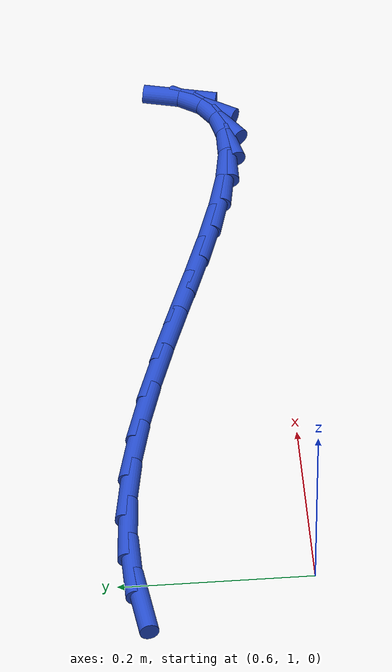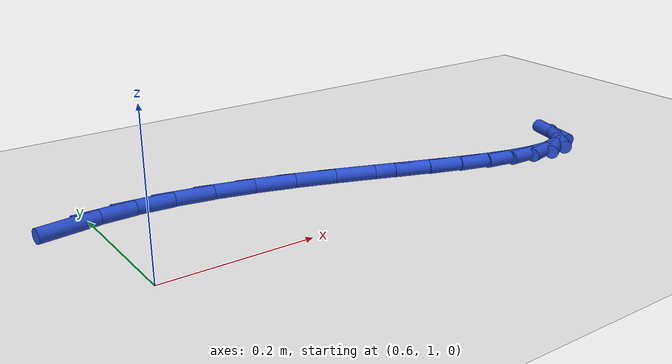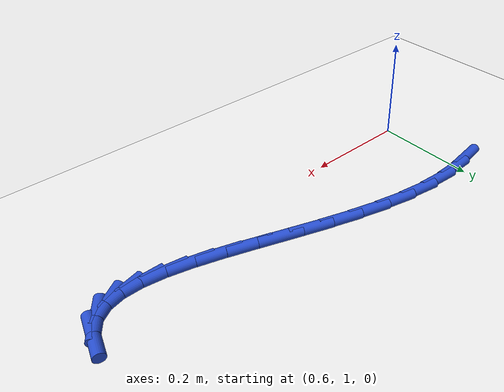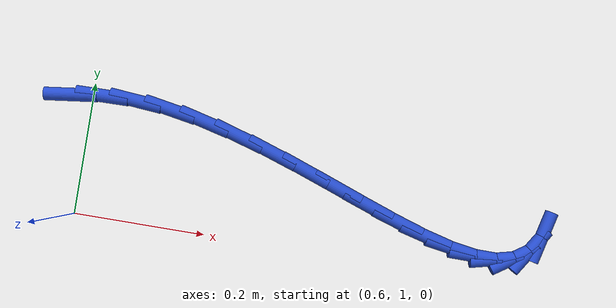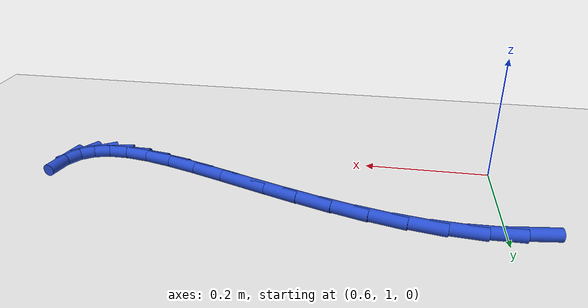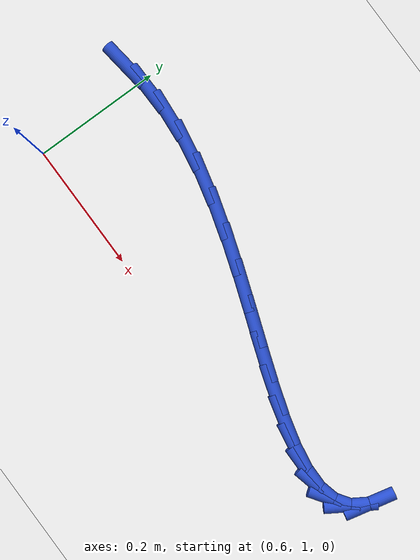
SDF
<sdf version="1.6">
 <world name="default">
  <model name="ground_plane">
   <static>1</static>
   <link name="link">
    <collision name="collision">
     <geometry><plane><normal>0 0 1</normal><size>100 100</size></plane></geometry>
     <surface><friction><ode><mu>100</mu><mu2>50</mu2></ode></friction></surface>
    </collision>
    <visual name="visual">
     <cast_shadows>0</cast_shadows>
     <geometry><plane><normal>0 0 1</normal><size>100 100</size></plane></geometry>
     <material>
      <script><uri>file://media/materials/scripts/gazebo.material</uri><name>Gazebo/WhiteGlow</name></script>
     </material>
    </visual>
   </link>
  </model>
  <model name="line">
   <link name="link_37">
    <pose>0.5686962242809466 1.1776729602812057 0.01 0 1.57 0.1258916611867134</pose>
    <collision name="collision">
     <geometry><cylinder><radius>0.01</radius><length>0.08</length></cylinder></geometry>
    </collision>
    <visual name="visual">
     <material>
      <script><name>Gazebo/Blue</name><uri>file://media/materials/scripts/gazebo.material</uri></script>
     </material>
     <geometry><cylinder><radius>0.01</radius><length>0.08</length></cylinder></geometry>
    </visual>
   </link>
   <link name="link_38">
    <pose>0.6159841366587461 1.1836577647251227 0.01 0 1.57 0.0144572070186565</pose>
    <collision name="collision">
     <geometry><cylinder><radius>0.01</radius><length>0.08</length></cylinder></geometry>
    </collision>
    <visual name="visual">
     <material>
      <script><name>Gazebo/Blue</name><uri>file://media/materials/scripts/gazebo.material</uri></script>
     </material>
     <geometry><cylinder><radius>0.01</radius><length>0.08</length></cylinder></geometry>
    </visual>
   </link>
   <link name="link_39">
    <pose>0.6669778760027624 1.1843950431385826 0.01 0 1.57 -0.08510780798336802</pose>
    <collision name="collision">
     <geometry><cylinder><radius>0.01</radius><length>0.08</length></cylinder></geometry>
    </collision>
    <visual name="visual">
     <material>
      <script><name>Gazebo/Blue</name><uri>file://media/materials/scripts/gazebo.material</uri></script>
     </material>
     <geometry><cylinder><radius>0.01</radius><length>0.08</length></cylinder></geometry>
    </visual>
   </link>
   <link name="link_40">
    <pose>0.7201433205949859 1.1798592920694408 0.01 0 1.57 -0.1729592587069869</pose>
    <collision name="collision">
     <geometry><cylinder><radius>0.01</radius><length>0.08</length></cylinder></geometry>
    </collision>
    <visual name="visual">
     <material>
      <script><name>Gazebo/Blue</name><uri>file://media/materials/scripts/gazebo.material</uri></script>
     </material>
     <geometry><cylinder><radius>0.01</radius><length>0.08</length></cylinder></geometry>
    </visual>
   </link>
   <link name="link_41">
    <pose>0.7742791219289952 1.1704015057862984 0.01 0 1.57 -0.2406707334244392</pose>
    <collision name="collision">
     <geometry><cylinder><radius>0.01</radius><length>0.08</length></cylinder></geometry>
    </collision>
    <visual name="visual">
     <material>
      <script><name>Gazebo/Blue</name><uri>file://media/materials/scripts/gazebo.material</uri></script>
     </material>
     <geometry><cylinder><radius>0.01</radius><length>0.08</length></cylinder></geometry>
    </visual>
   </link>
   <link name="link_42">
    <pose>0.8287643207282968 1.1570293276346737 0.01 0 1.57 -0.2902959865952461</pose>
    <collision name="collision">
     <geometry><cylinder><radius>0.01</radius><length>0.08</length></cylinder></geometry>
    </collision>
    <visual name="visual">
     <material>
      <script><name>Gazebo/Blue</name><uri>file://media/materials/scripts/gazebo.material</uri></script>
     </material>
     <geometry><cylinder><radius>0.01</radius><length>0.08</length></cylinder></geometry>
    </visual>
   </link>
   <link name="link_43">
    <pose>0.8830362791435478 1.1408163854913769 0.01 0 1.57 -0.324239251990807</pose>
    <collision name="collision">
     <geometry><cylinder><radius>0.01</radius><length>0.08</length></cylinder></geometry>
    </collision>
    <visual name="visual">
     <material>
      <script><name>Gazebo/Blue</name><uri>file://media/materials/scripts/gazebo.material</uri></script>
     </material>
     <geometry><cylinder><radius>0.01</radius><length>0.08</length></cylinder></geometry>
    </visual>
   </link>
   <link name="link_44">
    <pose>0.9365323593254058 1.1228363072332188 0.01 0 1.57 -0.3438039437400636</pose>
    <collision name="collision">
     <geometry><cylinder><radius>0.01</radius><length>0.08</length></cylinder></geometry>
    </collision>
    <visual name="visual">
     <material>
      <script><name>Gazebo/Blue</name><uri>file://media/materials/scripts/gazebo.material</uri></script>
     </material>
     <geometry><cylinder><radius>0.01</radius><length>0.08</length></cylinder></geometry>
    </visual>
   </link>
   <link name="link_45">
    <pose>0.9886899234245279 1.10416272073701 0.01 0 1.57 -0.3490944805405868</pose>
    <collision name="collision">
     <geometry><cylinder><radius>0.01</radius><length>0.08</length></cylinder></geometry>
    </collision>
    <visual name="visual">
     <material>
      <script><name>Gazebo/Blue</name><uri>file://media/materials/scripts/gazebo.material</uri></script>
     </material>
     <geometry><cylinder><radius>0.01</radius><length>0.08</length></cylinder></geometry>
    </visual>
   </link>
   <link name="link_46">
    <pose>1.0389463335915716 1.0858692538795607 0.01 0 1.57 -0.3387666432334503</pose>
    <collision name="collision">
     <geometry><cylinder><radius>0.01</radius><length>0.08</length></cylinder></geometry>
    </collision>
    <visual name="visual">
     <material>
      <script><name>Gazebo/Blue</name><uri>file://media/materials/scripts/gazebo.material</uri></script>
     </material>
     <geometry><cylinder><radius>0.01</radius><length>0.08</length></cylinder></geometry>
    </visual>
   </link>
   <link name="link_47">
    <pose>1.0867389519771946 1.069029534537682 0.01 0 1.57 -0.309442813718152</pose>
    <collision name="collision">
     <geometry><cylinder><radius>0.01</radius><length>0.08</length></cylinder></geometry>
    </collision>
    <visual name="visual">
     <material>
      <script><name>Gazebo/Blue</name><uri>file://media/materials/scripts/gazebo.material</uri></script>
     </material>
     <geometry><cylinder><radius>0.01</radius><length>0.08</length></cylinder></geometry>
    </visual>
   </link>
   <link name="link_48">
    <pose>1.1315051407320547 1.0547171905881834 0.01 0 1.57 -0.25448837019610693</pose>
    <collision name="collision">
     <geometry><cylinder><radius>0.01</radius><length>0.08</length></cylinder></geometry>
    </collision>
    <visual name="visual">
     <material>
      <script><name>Gazebo/Blue</name><uri>file://media/materials/scripts/gazebo.material</uri></script>
     </material>
     <geometry><cylinder><radius>0.01</radius><length>0.08</length></cylinder></geometry>
    </visual>
   </link>
   <link name="link_49">
    <pose>1.1726822620068078 1.0440058499078755 0.01 0 1.57 -0.16162022216920774</pose>
    <collision name="collision">
     <geometry><cylinder><radius>0.01</radius><length>0.08</length></cylinder></geometry>
    </collision>
    <visual name="visual">
     <material>
      <script><name>Gazebo/Blue</name><uri>file://media/materials/scripts/gazebo.material</uri></script>
     </material>
     <geometry><cylinder><radius>0.01</radius><length>0.08</length></cylinder></geometry>
    </visual>
   </link>
   <link name="link_50">
    <pose>1.2097076779521128 1.0379691403735694 0.01 0 1.57 -0.008927058878610774</pose>
    <collision name="collision">
     <geometry><cylinder><radius>0.01</radius><length>0.08</length></cylinder></geometry>
    </collision>
    <visual name="visual">
     <material>
      <script><name>Gazebo/Blue</name><uri>file://media/materials/scripts/gazebo.material</uri></script>
     </material>
     <geometry><cylinder><radius>0.01</radius><length>0.08</length></cylinder></geometry>
    </visual>
   </link>
   <link name="link_51">
    <pose>1.2420187507186262 1.037680689862075 0.01 0 1.57 0.23712718297499777</pose>
    <collision name="collision">
     <geometry><cylinder><radius>0.01</radius><length>0.08</length></cylinder></geometry>
    </collision>
    <visual name="visual">
     <material>
      <script><name>Gazebo/Blue</name><uri>file://media/materials/scripts/gazebo.material</uri></script>
     </material>
     <geometry><cylinder><radius>0.01</radius><length>0.08</length></cylinder></geometry>
    </visual>
   </link>
   <link name="link_52">
    <pose>1.2690528424570062 1.0442141262502032 0.01 0 1.57 0.5977155709318069</pose>
    <collision name="collision">
     <geometry><cylinder><radius>0.01</radius><length>0.08</length></cylinder></geometry>
    </collision>
    <visual name="visual">
     <material>
      <script><name>Gazebo/Blue</name><uri>file://media/materials/scripts/gazebo.material</uri></script>
     </material>
     <geometry><cylinder><radius>0.01</radius><length>0.08</length></cylinder></geometry>
    </visual>
   </link>
   <link name="link_53">
    <pose>1.2902473153179097 1.0586430774147642 0.01 0 1.57 1.0070380241342893</pose>
    <collision name="collision">
     <geometry><cylinder><radius>0.01</radius><length>0.08</length></cylinder></geometry>
    </collision>
    <visual name="visual">
     <material>
      <script><name>Gazebo/Blue</name><uri>file://media/materials/scripts/gazebo.material</uri></script>
     </material>
     <geometry><cylinder><radius>0.01</radius><length>0.08</length></cylinder></geometry>
    </visual>
   </link>
   <link name="link_54">
    <pose>1.3050395314519943 1.0820411712325682 0.01 0 1.57 1.340478955888795</pose>
    <collision name="collision">
     <geometry><cylinder><radius>0.01</radius><length>0.08</length></cylinder></geometry>
    </collision>
    <visual name="visual">
     <material>
      <script><name>Gazebo/Blue</name><uri>file://media/materials/scripts/gazebo.material</uri></script>
     </material>
     <geometry><cylinder><radius>0.01</radius><length>0.08</length></cylinder></geometry>
    </visual>
   </link>
  </model>
 </world>
</sdf>
